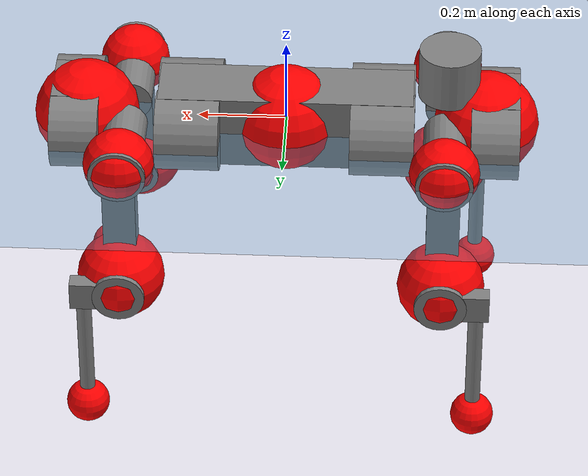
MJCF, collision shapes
<mujoco model="anymal_c">
  <compiler angle="radian" assetdir="assets" balanceinertia="true" inertiafromgeom="false"/>

  <option timestep="0.005" density="1.2" viscosity="2e-05"/>

  <size nkey="1"/>

  <visual>
    <quality shadowsize="8192"/>
    <map shadowclip="0.5"/>
  </visual>

  <default>
    <default class="/">
      <material specular="0" shininess="0.25"/>
      <geom contype="0" conaffinity="0" group="1" solref="-1000 -80"/>
      <site size="0.01 0.005 0.005" group="5"/>
      <general forcelimited="true" forcerange="-80 80" biastype="affine" gainprm="80" biasprm="0 -80 -2"/>
      <default class="anymal_c">
        <joint armature="0.01" damping="0.01" frictionloss="0.1"/>
        <default class="visual">
          <geom type="mesh" group="2"/>
          <default class="visual_zflip"/>
        </default>
        <default class="collision">
          <geom type="cylinder" group="3"/>
          <default class="foot">
            <geom size="0.03 0 0" type="sphere" condim="6" priority="1" friction="0.8 0.02 0.01" solimp="0.015 1 0.03"/>
          </default>
        </default>
      </default>
      <default class="reward_collision_sphere">
        <geom group="5" rgba="1 0 0 1"/>
      </default>
    </default>
  </default>

  <asset>
    <texture type="skybox" colorspace="auto" name="//unnamed_texture_0" builtin="gradient" rgb1="0.95 0.95 0.95" rgb2="0.95 0.95 0.95" width="100" height="600"/>
    <texture type="2d" colorspace="auto" name="texplane" builtin="checker" rgb1="0.345 0.575 0.748" rgb2="0.345 0.575 0.748" markrgb="1 1 1" width="512" height="512"/>
    <texture type="2d" colorspace="linear" name="base" file="base.png"/>
    <texture type="2d" colorspace="linear" name="top_shell" file="top_shell.png"/>
    <texture type="2d" colorspace="linear" name="bottom_shell" file="bottom_shell.png"/>
    <texture type="2d" colorspace="linear" name="remote" file="remote.png"/>
    <texture type="2d" colorspace="linear" name="hatch" file="hatch.png"/>
    <texture type="2d" colorspace="linear" name="handle" file="handle.png"/>
    <texture type="2d" colorspace="linear" name="face" file="face.png"/>
    <texture type="2d" colorspace="linear" name="battery" file="battery.png"/>
    <texture type="2d" colorspace="linear" name="lidar_cage" file="lidar_cage.png"/>
    <texture type="2d" colorspace="linear" name="depth_camera" file="depth_camera.png"/>
    <texture type="2d" colorspace="linear" name="wide_angle_camera" file="wide_angle_camera.png"/>
    <texture type="2d" colorspace="linear" name="lidar" file="lidar.png"/>
    <texture type="2d" colorspace="linear" name="drive" file="drive.png"/>
    <texture type="2d" colorspace="linear" name="hip_l" file="hip_l.png"/>
    <texture type="2d" colorspace="linear" name="shank_l" file="shank_l.png"/>
    <texture type="2d" colorspace="linear" name="foot" file="foot.png"/>
    <texture type="2d" colorspace="linear" name="thigh" file="thigh.png"/>
    <texture type="2d" colorspace="linear" name="shank_r" file="shank_r.png"/>
    <texture type="2d" colorspace="linear" name="hip_r" file="hip_r.png"/>
    <material name="MatPlane" class="/" texture="texplane" texuniform="true" texrepeat="2 2" specular="0.9" shininess="0.5"/>
    <material name="black_plastic" class="/" rgba="0.007 0.007 0.007 1"/>
    <material name="green" class="/" rgba="0.052 0.178 0.033 1"/>
    <material name="red" class="/" rgba="0.178 0.006 0.005 1"/>
    <material name="yellow" class="/" rgba="0.178 0.119 0.006 1"/>
    <material name="lwl" class="/" rgba="0.8 0.8 0.8 1"/>
    <material name="base" class="/" texture="base"/>
    <material name="top_shell" class="/" texture="top_shell"/>
    <material name="bottom_shell" class="/" texture="bottom_shell"/>
    <material name="hip_l" class="/" texture="hip_l"/>
    <material name="thigh" class="/" texture="thigh"/>
    <material name="shank_l" class="/" texture="shank_l"/>
    <material name="foot" class="/" texture="foot"/>
    <material name="hip_r" class="/" texture="hip_r"/>
    <material name="shank" class="/" texture="shank_r"/>
    <material name="hatch" class="/" texture="hatch"/>
    <material name="remote" class="/" texture="remote"/>
    <material name="handle" class="/" texture="handle"/>
    <material name="face" class="/" texture="face"/>
    <material name="depth_camera" class="/" texture="depth_camera"/>
    <material name="wide_angle_camera" class="/" texture="wide_angle_camera"/>
    <material name="battery" class="/" texture="battery"/>
    <material name="lidar_cage" class="/" texture="lidar_cage"/>
    <material name="lidar" class="/" texture="lidar"/>
    <material name="drive" class="/" texture="drive"/>
    <mesh name="base_0" class="/" file="base_0.obj"/>
    <mesh name="base_1" class="/" file="base_1.obj"/>
    <mesh name="base_2" class="/" file="base_2.obj"/>
    <mesh name="base_3" class="/" file="base_3.obj"/>
    <mesh name="base_4" class="/" file="base_4.obj"/>
    <mesh name="base_5" class="/" file="base_5.obj"/>
    <mesh name="top_shell" class="/" file="top_shell.obj"/>
    <mesh name="bottom_shell" class="/" file="bottom_shell.obj"/>
    <mesh name="remote" class="/" file="remote.obj"/>
    <mesh name="handle" class="/" file="handle.obj"/>
    <mesh name="face" class="/" file="face.obj"/>
    <mesh name="wide_angle_camera" class="/" file="wide_angle_camera.obj"/>
    <mesh name="depth_camera" class="/" file="depth_camera.obj"/>
    <mesh name="battery" class="/" file="battery.obj"/>
    <mesh name="lidar_cage" class="/" file="lidar_cage.obj"/>
    <mesh name="lidar" class="/" file="lidar.obj"/>
    <mesh name="drive" class="/" file="drive.obj"/>
    <mesh name="hip_l" class="/" file="hip_l.obj"/>
    <mesh name="thigh" class="/" file="thigh.obj"/>
    <mesh name="shank_l" class="/" file="shank_l.obj"/>
    <mesh name="foot" class="/" file="foot.obj"/>
    <mesh name="hip_r" class="/" file="hip_r.obj"/>
    <mesh name="hatch" class="/" file="hatch.obj"/>
    <mesh name="shank_r" class="/" file="shank_r.obj"/>
  </asset>

  <worldbody>
    <geom name="floor" class="/" size="100 100 0.125" type="plane" group="0" material="MatPlane"/>
    <light name="toplight_shadow" class="/" pos="0 0 5" dir="0.0990148 0.0990148 -0.990148" type="directional" ambient="0.04 0.04 0.04" diffuse="0.55 0.55 0.55" specular="0.12 0.12 0.12"/>
    <light name="toplight_fill" class="/" pos="0 0 5" dir="0.0990148 0.0990148 -0.990148" type="directional" castshadow="false" ambient="0.04 0.04 0.04" diffuse="0.3 0.3 0.3" specular="0.08 0.08 0.08"/>
    <body name="trunk" childclass="anymal_c" pos="-7.6408e-05 -0.00140287 0.000948132" quat="1 0.000186199 -0.000256211 -0.000643307">
      <inertial pos="0.00150844 -0.00271282 0.0525305" quat="0.500348 0.502224 0.499864 0.497553" mass="18.5652" diaginertia="0.626036 0.412563 0.271001"/>
      <joint name="//unnamed_joint_0" type="free" armature="0" damping="0" frictionloss="0"/>
      <geom name="//unnamed_geom_1" class="visual" material="green" mesh="base_0"/>
      <geom name="//unnamed_geom_2" class="visual" material="yellow" mesh="base_1"/>
      <geom name="//unnamed_geom_3" class="visual" material="red" mesh="base_2"/>
      <geom name="//unnamed_geom_4" class="visual" material="black_plastic" mesh="base_3"/>
      <geom name="//unnamed_geom_5" class="visual" material="lwl" mesh="base_4"/>
      <geom name="//unnamed_geom_6" class="visual" material="base" mesh="base_5"/>
      <geom name="trunk_1" class="collision" size="0.288311 0.0695924 0.0894759" type="box"/>
      <geom name="trunk_2" class="collision" size="0.0894759 0.0720778" pos="0.219479 0.0648849 0" quat="0.707107 0 0.707107 0"/>
      <geom name="trunk_3" class="collision" size="0.0894759 0.0720778" pos="-0.219479 0.0648849 0" quat="0.707107 0 0.707107 0"/>
      <geom name="trunk_4" class="collision" size="0.0894759 0.0720778" pos="0.219479 -0.0648849 0" quat="0.707107 0 0.707107 0"/>
      <geom name="trunk_5" class="collision" size="0.0894759 0.0720778" pos="-0.219479 -0.0648849 0" quat="0.707107 0 0.707107 0"/>
      <geom name="//unnamed_geom_12" class="visual" material="top_shell" mesh="top_shell"/>
      <geom name="//unnamed_geom_13" class="visual" material="bottom_shell" mesh="bottom_shell"/>
      <geom name="//unnamed_geom_14" class="visual" material="remote" mesh="remote"/>
      <geom name="//unnamed_geom_15" class="visual" material="handle" mesh="handle"/>
      <geom name="//unnamed_geom_16" class="visual" pos="0.418271 0 0" quat="1 0 0 0" material="face" mesh="face"/>
      <geom name="trunk_6" class="collision" size="0.0546797 0.0695924 0.0894759" pos="0.473772 0 0" type="box"/>
      <geom name="//unnamed_geom_18" class="collision" size="0.0894759 0.0546797" pos="0.473772 0.0648849 0" quat="0.707107 0 0.707107 0"/>
      <geom name="//unnamed_geom_19" class="collision" size="0.0894759 0.0546797" pos="0.473772 -0.0648849 0" quat="0.707107 0 0.707107 0"/>
      <geom name="//unnamed_geom_20" class="visual" pos="0.465852 0 -0.0308422" quat="0.965926 0 0.258819 0" material="depth_camera" mesh="depth_camera"/>
      <geom name="//unnamed_geom_21" class="visual" pos="0.517668 0 0.0156662" material="wide_angle_camera" mesh="wide_angle_camera"/>
      <geom name="//unnamed_geom_22" class="visual_zflip" pos="-0.418271 0 0" quat="0 0 0 1" material="face" mesh="face"/>
      <geom name="trunk_7" class="collision" size="0.0546797 0.0695924 0.0894759" pos="-0.473772 0 0" quat="0 0 0 1" type="box"/>
      <geom name="//unnamed_geom_24" class="collision" size="0.0894759 0.0546797" pos="-0.473772 -0.0648849 0" quat="0 -0.707107 0 0.707107"/>
      <geom name="//unnamed_geom_25" class="collision" size="0.0894759 0.0546797" pos="-0.473772 0.0648849 0" quat="0 -0.707107 0 0.707107"/>
      <geom name="//unnamed_geom_26" class="visual" pos="-0.465852 0 -0.0308422" quat="0 -0.258819 0 0.965926" material="depth_camera" mesh="depth_camera"/>
      <geom name="//unnamed_geom_27" class="visual_zflip" pos="-0.517668 0 0.0156662" quat="0 0 0 1" material="wide_angle_camera" mesh="wide_angle_camera"/>
      <geom name="//unnamed_geom_28" class="visual" material="battery" mesh="battery"/>
      <geom name="//unnamed_geom_29" class="visual" pos="0 0.0697962 0.0301167" quat="0.683013 -0.183013 0.183013 0.683013" material="depth_camera" mesh="depth_camera"/>
      <geom name="//unnamed_geom_30" class="visual" pos="0 -0.0697962 0.0301167" quat="0.683013 0.183013 0.183013 -0.683013" material="depth_camera" mesh="depth_camera"/>
      <geom name="//unnamed_geom_31" class="visual" pos="-0.367312 0 0.0769181" quat="1 0 0 0" material="lidar_cage" mesh="lidar_cage"/>
      <geom name="trunk_8" class="collision" size="0.0695924 0.0596506" pos="-0.367312 0 0.139708"/>
      <geom name="//unnamed_geom_33" class="visual" pos="-0.367312 -3.22827e-05 0.148813" quat="0.707107 0 0 -0.707107" material="lidar" mesh="lidar"/>
      <geom name="//unnamed_geom_34" class="visual" pos="0.302629 0.096443 -2.06272e-09" quat="0.258819 0.965926 0 0" material="drive" mesh="drive"/>
      <geom name="//unnamed_geom_35" class="visual" pos="0.302629 -0.096443 2.06272e-09" quat="0.258819 -0.965926 0 0" material="drive" mesh="drive"/>
      <geom name="//unnamed_geom_36" class="visual" pos="-0.302629 0.096443 2.06272e-09" quat="0 0 0.965926 -0.258819" material="drive" mesh="drive"/>
      <geom name="//unnamed_geom_37" class="visual" pos="-0.302629 -0.096443 -2.06272e-09" quat="0 0 -0.965926 -0.258819" material="drive" mesh="drive"/>
      <geom name="//unnamed_geom_38" class="visual" pos="0.117055 0 0.0763949" quat="1 0 0 0" material="hatch" mesh="hatch"/>
      <geom name="//unnamed_geom_39" class="reward_collision_sphere" size="0.119301"/>
      <geom name="//unnamed_geom_40" class="reward_collision_sphere" size="0.119301" pos="0.454094 0 0"/>
      <geom name="//unnamed_geom_41" class="reward_collision_sphere" size="0.119301" pos="-0.454094 0 0"/>
      <site name="imu" pos="0.250857 0.0103223 0.0510413" size="0.00994177"/>
      <camera name="track" pos="0 -1.85386 0" quat="0.707107 0.707107 0 0" mode="trackcom"/>
      <camera name="ego_camera" pos="0.454094 0 -0.0418602" quat="-0.5 -0.5 0.5 0.5"/>
      <body name="LF_HIP" pos="0.302858 0.0965097 -0.000108056" quat="0.258638 0.965974 -2.56967e-05 0.000144411">
        <inertial pos="0.0572879 -0.0160863 -0.00879396" quat="-0.119744 0.715057 -0.127209 0.676885" mass="2.71171" diaginertia="0.00601909 0.00332565 0.00405164"/>
        <joint name="LF_HAA" pos="0 0 0" axis="1 0.000152157 -0.00016818" range="-0.725969 0.508436" armature="0.00955139" damping="0.0133503" frictionloss="0.100432"/>
        <geom name="//unnamed_geom_42" class="visual" pos="0 -0.000121341 1.99301e-05" quat="0.258819 -0.965926 0 0" material="hip_l" mesh="hip_l"/>
        <geom name="//unnamed_geom_43" class="visual" pos="0.060445 -0.0722026 -0.0425706" quat="0.183013 -0.683013 0.683013 0.183013" material="drive" mesh="drive"/>
        <geom name="//unnamed_geom_44" class="collision" size="0.0497089 0.0695924" pos="0.060445 -0.0110859 -0.00722612" quat="-0.353553 -0.612372 0.612372 -0.353553"/>
        <body name="LF_THIGH" pos="0.0630481 -0.0674136 -0.0451887" quat="0.183505 -0.682294 0.683753 0.182433">
          <inertial pos="0.0313051 0.00274133 -0.25636" quat="0.993287 -0.0063683 -0.0810541 0.0822791" mass="3.02355" diaginertia="0.0305589 0.021072 0.00524425"/>
          <joint name="LF_HFE" pos="0 0 0" axis="0.99996 -0.00454527 -0.00772423" stiffness="0.000369846" range="-3.17611 3.08562" armature="0.0112652" damping="0.00520907" frictionloss="0.0963122"/>
          <geom name="//unnamed_geom_45" class="visual" pos="0.00163488 2.57619e-06 0" quat="0.707107 0 0 -0.707107" material="thigh" mesh="thigh"/>
          <geom name="//unnamed_geom_46" class="collision" size="0.0646215 0.0397671" pos="0.0403639 0 0" quat="0.5 0.5 -0.5 -0.5"/>
          <geom name="//unnamed_geom_47" class="collision" size="0.0372816 0.0298253 0.140491" pos="0.030273 0 -0.147886" quat="0.707107 0 0 -0.707107" type="box"/>
          <geom name="//unnamed_geom_48" class="visual" pos="0.101213 0 -0.298254" quat="1 0 0 0" material="drive" mesh="drive"/>
          <geom name="//unnamed_geom_49" class="collision" size="0.0497089 0.0695924" pos="0.0305757 0 -0.298254" quat="0.707107 0 0.707107 0"/>
          <geom name="//unnamed_geom_50" class="reward_collision_sphere" size="0.0795342" pos="0.0252275 0 0"/>
          <body name="LF_SHANK" pos="0.10104 -0.000570626 -0.296571" quat="1 1.09912e-05 -4.74851e-05 9.14129e-05">
            <inertial pos="0.00297464 -0.0578143 -0.0866542" quat="0.993214 -0.113007 -0.000609841 -0.0274736" mass="0.564101" diaginertia="0.0105022 0.00643489 0.00138378"/>
            <joint name="LF_KFE" pos="0 0 0" axis="0.999998 0.00207264 -0.000777997" range="-3.08675 3.18162" armature="0.00964254" damping="0" frictionloss="0.0950532"/>
            <geom name="//unnamed_geom_51" class="visual" pos="0.000533098 0.00284251 0" quat="0.707107 0 0 -0.707107" material="shank_l" mesh="shank_l"/>
            <geom name="LF_kfe_act" class="collision" size="0.0596506 0.0198835" pos="0.020182 0 0" quat="0.5 0.5 -0.5 -0.5"/>
            <geom name="//unnamed_geom_53" class="collision" size="0.0571642 0.0335535 0.0188894" pos="0.020182 -0.0532974 0" quat="0.5 0.5 -0.5 -0.5" type="box"/>
            <geom name="//unnamed_geom_54" class="visual" pos="0.0131686 -0.0806073 -0.353687" quat="0.382683 0 0 -0.92388" material="foot" mesh="foot"/>
            <geom name="LF_calf" class="collision" size="0.0173981 0.140429" pos="0.0131687 -0.0815233 -0.176844" quat="0.707107 0 0 -0.707107"/>
            <geom name="LF_foot" class="foot" size="0.0306967" pos="0.0131687 -0.0815233 -0.330141" quat="0.707107 0 0 -0.707107"/>
            <geom name="//unnamed_geom_57" class="reward_collision_sphere" size="0.0994177" pos="-0.0504549 0 0"/>
            <geom name="//unnamed_geom_58" class="reward_collision_sphere" size="0.0497089" pos="0.0131687 -0.0815233 -0.330141"/>
            <site name="LF_foot" class="foot" pos="0.0131687 -0.0815233 -0.330141" quat="0.707107 0 0 -0.707107" size="0.00994177"/>
          </body>
        </body>
      </body>
      <body name="RF_HIP" pos="0.300414 -0.0968391 -0.00235934" quat="0.258581 -0.96599 0.00040897 -0.000103437">
        <inertial pos="0.0576696 0.0141655 -0.00866588" quat="0.128653 0.681065 0.13853 0.707395" mass="2.75787" diaginertia="0.00601621 0.0033618 0.00409902"/>
        <joint name="RF_HAA" pos="0 0 0" axis="0.999984 0.00341642 -0.0044379" range="-0.487738 0.771716" armature="0.0100023" damping="0.0112157" frictionloss="0.0942984"/>
        <geom name="//unnamed_geom_59" class="visual" pos="0 0.00012134 1.993e-05" quat="0.258819 0.965926 0 0" material="hip_r" mesh="hip_r"/>
        <geom name="//unnamed_geom_60" class="visual" pos="0.060445 0.0722026 -0.0425706" quat="0.183013 0.683013 0.683013 -0.183013" material="drive" mesh="drive"/>
        <geom name="//unnamed_geom_61" class="collision" size="0.0497089 0.0695924" pos="0.060445 0.0110859 -0.00722612" quat="-0.353553 0.612372 0.612372 0.353553"/>
        <body name="RF_THIGH" pos="0.0612092 0.0690256 -0.0463628" quat="0.182921 0.68298 0.683177 -0.182611">
          <inertial pos="0.0315152 -0.00138478 -0.254253" quat="0.992332 -0.00560607 -0.0835213 0.0909367" mass="2.97309" diaginertia="0.0310319 0.0204101 0.00523956"/>
          <joint name="RF_HFE" pos="0 0 0" axis="1 0.000180005 -0.000968667" stiffness="0.0147013" range="-3.14866 3.1242" armature="0.00877217" damping="0.022832" frictionloss="0.0940568"/>
          <geom name="//unnamed_geom_62" class="visual" pos="0.00163488 2.57619e-06 0" quat="0.707107 0 0 -0.707107" material="thigh" mesh="thigh"/>
          <geom name="//unnamed_geom_63" class="collision" size="0.0646215 0.0397671" pos="0.0403639 0 0" quat="0.5 0.5 0.5 0.5"/>
          <geom name="//unnamed_geom_64" class="collision" size="0.0372816 0.0298253 0.140491" pos="0.030273 0 -0.147886" quat="0.707107 0 0 0.707107" type="box"/>
          <geom name="//unnamed_geom_65" class="visual" pos="0.101213 0 -0.298254" quat="1 0 0 0" material="drive" mesh="drive"/>
          <geom name="//unnamed_geom_66" class="collision" size="0.0497089 0.0695924" pos="0.0305757 0 -0.298254" quat="0.707107 0 0.707107 0"/>
          <geom name="//unnamed_geom_67" class="reward_collision_sphere" size="0.0795342" pos="0.0252275 0 0"/>
          <body name="RF_SHANK" pos="0.10237 2.0532e-05 -0.2961" quat="1 6.54693e-05 0.000297315 0.000416664">
            <inertial pos="0.00469357 0.0581637 -0.0836825" quat="0.992914 0.116387 -0.00157296 0.0239458" mass="0.596848" diaginertia="0.011063 0.00666672 0.00143409"/>
            <joint name="RF_KFE" pos="0 0 0" axis="0.999995 -0.00153279 -0.002868" range="-3.14522 3.116" armature="0.0102551" damping="0" frictionloss="0.102712"/>
            <geom name="//unnamed_geom_68" class="visual" pos="0.000533095 -0.0028425 0" quat="0.707107 0 0 0.707107" material="shank" mesh="shank_r"/>
            <geom name="RF_kfe_act" class="collision" size="0.0596506 0.0198835" pos="0.020182 0 0" quat="0.5 0.5 0.5 0.5"/>
            <geom name="//unnamed_geom_70" class="collision" size="0.0571642 0.0335535 0.0188894" pos="0.020182 0.0532974 0" quat="0.5 0.5 0.5 0.5" type="box"/>
            <geom name="//unnamed_geom_71" class="visual" pos="0.0131689 0.0806073 -0.353687" quat="0.382683 0 0 0.92388" material="foot" mesh="foot"/>
            <geom name="RF_calf" class="collision" size="0.0173981 0.140429" pos="0.0131687 0.0815233 -0.176844" quat="0.707107 0 0 0.707107"/>
            <geom name="RF_foot" class="foot" size="0.0269725" pos="0.0131687 0.0815233 -0.330141" quat="0.707107 0 0 0.707107"/>
            <geom name="//unnamed_geom_74" class="reward_collision_sphere" size="0.0994177" pos="-0.0504549 0 0"/>
            <geom name="//unnamed_geom_75" class="reward_collision_sphere" size="0.0497089" pos="0.0131687 0.0815233 -0.330141"/>
            <site name="RF_foot" class="foot" pos="0.0131687 0.0815233 -0.330141" quat="0.707107 0 0 0.707107" size="0.00994177"/>
          </body>
        </body>
      </body>
      <body name="LH_HIP" pos="-0.302094 0.0971491 0.0019621" quat="-0.000264745 -5.52087e-05 0.965873 -0.259016">
        <inertial pos="0.0563854 0.0150796 -0.00779602" quat="0.139301 0.681016 0.126796 0.707627" mass="2.65891" diaginertia="0.00624119 0.00337964 0.00419396"/>
        <joint name="LH_HAA" pos="0 0 0" axis="0.999992 -0.00175776 0.00372597" stiffness="0.00417583" range="-0.447563 0.738915" armature="0.0104465" damping="0.00860741" frictionloss="0.109448"/>
        <geom name="//unnamed_geom_76" class="visual" pos="0 0.00012134 1.993e-05" quat="-0.258819 -0.965926 0 0" material="hip_r" mesh="hip_r"/>
        <geom name="//unnamed_geom_77" class="visual" pos="0.060445 0.0722026 -0.0425706" quat="0.183013 0.683013 0.683013 -0.183013" material="drive" mesh="drive"/>
        <geom name="//unnamed_geom_78" class="collision" size="0.0497089 0.0695924" pos="0.060445 0.0110859 -0.00722612" quat="-0.353553 0.612372 0.612372 0.353553"/>
        <body name="LH_THIGH" pos="0.0599605 0.0680266 -0.0433728" quat="0.182984 0.683866 0.681989 -0.183669">
          <inertial pos="0.0316971 0.00254319 -0.257709" quat="0.992675 -0.0120658 -0.075517 0.093529" mass="2.91179" diaginertia="0.0313776 0.0206085 0.00540958"/>
          <joint name="LH_HFE" pos="0 0 0" axis="0.99991 0.00957504 0.00942536" stiffness="0.00322738" range="-3.13346 3.12824" armature="0.0106007" damping="0.0193134" frictionloss="0.0961193"/>
          <geom name="//unnamed_geom_79" class="visual" pos="0.00163488 2.57619e-06 0" quat="0.707107 0 0 -0.707107" material="thigh" mesh="thigh"/>
          <geom name="//unnamed_geom_80" class="collision" size="0.0646215 0.0397671" pos="0.0403639 0 0" quat="0.5 0.5 -0.5 -0.5"/>
          <geom name="//unnamed_geom_81" class="collision" size="0.0372816 0.0298253 0.140491" pos="0.030273 0 -0.147886" quat="0.707107 0 0 -0.707107" type="box"/>
          <geom name="//unnamed_geom_82" class="visual" pos="0.101213 0 -0.298254" quat="1 0 0 0" material="drive" mesh="drive"/>
          <geom name="//unnamed_geom_83" class="collision" size="0.0497089 0.0695924" pos="0.0305757 0 -0.298254" quat="0.707107 0 0.707107 0"/>
          <geom name="//unnamed_geom_84" class="reward_collision_sphere" size="0.0795342" pos="0.0252275 0 0"/>
          <body name="LH_SHANK" pos="0.101475 -0.000500751 -0.297729" quat="1 1.33807e-05 1.7168e-05 -6.43266e-05">
            <inertial pos="0.00523334 0.0589125 -0.0845379" quat="0.992933 0.115454 -0.000132845 0.0274504" mass="0.580129" diaginertia="0.0103187 0.00612516 0.00135706"/>
            <joint name="LH_KFE" pos="0 0 0" axis="0.999987 0.0021165 0.00455028" stiffness="0.00608312" range="-3.09028 3.13384" armature="0.0112756" damping="0.0168094" frictionloss="0.0933158"/>
            <geom name="//unnamed_geom_85" class="visual" pos="0.000533095 -0.0028425 0" quat="-0.707107 0 0 -0.707107" material="shank" mesh="shank_r"/>
            <geom name="LH_kfe_act" class="collision" size="0.0596506 0.0198835" pos="0.020182 0 0" quat="0.5 0.5 -0.5 -0.5"/>
            <geom name="//unnamed_geom_87" class="collision" size="0.0571642 0.0335535 0.0188894" pos="0.020182 0.0532974 0" quat="0.5 0.5 -0.5 -0.5" type="box"/>
            <geom name="//unnamed_geom_88" class="visual" pos="0.0131689 0.0806073 -0.353687" quat="-0.382683 0 0 -0.92388" material="foot" mesh="foot"/>
            <geom name="LH_calf" class="collision" size="0.0173981 0.140429" pos="0.0131687 0.0815233 -0.176844" quat="0.707107 0 0 -0.707107"/>
            <geom name="LH_foot" class="foot" size="0.0300641" pos="0.0131687 0.0815233 -0.330141" quat="0.707107 0 0 -0.707107"/>
            <geom name="//unnamed_geom_91" class="reward_collision_sphere" size="0.0994177" pos="-0.0504549 0 0"/>
            <geom name="//unnamed_geom_92" class="reward_collision_sphere" size="0.0497089" pos="0.0131687 0.0815233 -0.330141"/>
            <site name="LH_foot" class="foot" pos="0.0131687 0.0815233 -0.330141" quat="0.707107 0 0 -0.707107" size="0.00994177"/>
          </body>
        </body>
      </body>
      <body name="RH_HIP" pos="-0.305197 -0.0975528 0.000615152" quat="0.000608411 -0.00127407 -0.966004 -0.258525">
        <inertial pos="0.0576998 -0.0133353 -0.00822862" quat="-0.127982 0.710249 -0.135579 0.678812" mass="2.71754" diaginertia="0.00610017 0.00331508 0.00425128"/>
        <joint name="RH_HAA" pos="0 0 0" axis="0.999997 0.00222078 0.000320361" stiffness="0.00390856" range="-0.70254 0.524196" armature="0.01122" damping="0.011548" frictionloss="0.10456"/>
        <geom name="//unnamed_geom_93" class="visual" pos="0 -0.000121341 1.99301e-05" quat="-0.258819 0.965926 0 0" material="hip_l" mesh="hip_l"/>
        <geom name="//unnamed_geom_94" class="visual" pos="0.060445 -0.0722026 -0.0425706" quat="-0.183013 0.683013 -0.683013 -0.183013" material="drive" mesh="drive"/>
        <geom name="//unnamed_geom_95" class="collision" size="0.0497089 0.0695924" pos="0.060445 -0.0110859 -0.00722612" quat="0.353553 0.612372 -0.612372 0.353553"/>
        <body name="RH_THIGH" pos="0.0588464 -0.0649786 -0.0438333" quat="-0.183252 0.682877 -0.683052 -0.183132">
          <inertial pos="0.0310149 -0.00201138 -0.257398" quat="0.993429 -0.00666666 -0.0783021 0.083204" mass="2.94068" diaginertia="0.0312612 0.0204407 0.00509748"/>
          <joint name="RH_HFE" pos="0 0 0" axis="0.999993 -0.00261736 0.00268135" stiffness="0.00642543" range="-3.13131 3.19544" armature="0.00862238" damping="0.0193122" frictionloss="0.0974731"/>
          <geom name="//unnamed_geom_96" class="visual" pos="0.00163488 2.57619e-06 0" quat="0.707107 0 0 -0.707107" material="thigh" mesh="thigh"/>
          <geom name="//unnamed_geom_97" class="collision" size="0.0646215 0.0397671" pos="0.0403639 0 0" quat="0.5 0.5 0.5 0.5"/>
          <geom name="//unnamed_geom_98" class="collision" size="0.0372816 0.0298253 0.140491" pos="0.030273 0 -0.147886" quat="0.707107 0 0 0.707107" type="box"/>
          <geom name="//unnamed_geom_99" class="visual" pos="0.101213 0 -0.298254" quat="1 0 0 0" material="drive" mesh="drive"/>
          <geom name="//unnamed_geom_100" class="collision" size="0.0497089 0.0695924" pos="0.0305757 0 -0.298254" quat="0.707107 0 0.707107 0"/>
          <geom name="//unnamed_geom_101" class="reward_collision_sphere" size="0.0795342" pos="0.0252275 0 0"/>
          <body name="RH_SHANK" pos="0.101608 -0.000296555 -0.29813" quat="1 -2.96949e-05 5.33344e-06 0.000160597">
            <inertial pos="0.00492711 -0.0575455 -0.084036" quat="0.992829 -0.116687 -0.000445885 -0.0259765" mass="0.589809" diaginertia="0.0105264 0.00635088 0.0014068"/>
            <joint name="RH_KFE" pos="0 0 0" axis="0.999995 0.000856967 0.00293018" range="-3.07545 3.13748" armature="0.00986852" damping="0.0142878" frictionloss="0.102351"/>
            <geom name="//unnamed_geom_102" class="visual" pos="0.000533098 0.00284251 0" quat="0.707107 0 0 -0.707107" material="shank_l" mesh="shank_l"/>
            <geom name="RH_kfe_act" class="collision" size="0.0596506 0.0198835" pos="0.020182 0 0" quat="0.5 0.5 0.5 0.5"/>
            <geom name="//unnamed_geom_104" class="collision" size="0.0571642 0.0335535 0.0188894" pos="0.020182 -0.0532974 0" quat="0.5 0.5 0.5 0.5" type="box"/>
            <geom name="//unnamed_geom_105" class="visual" pos="0.0131686 -0.0806073 -0.353687" quat="0.382683 0 0 -0.92388" material="foot" mesh="foot"/>
            <geom name="RH_calf" class="collision" size="0.0173981 0.140429" pos="0.0131687 -0.0815233 -0.176844" quat="0.707107 0 0 0.707107"/>
            <geom name="RH_foot" class="foot" size="0.0309502" pos="0.0131687 -0.0815233 -0.330141" quat="0.707107 0 0 0.707107"/>
            <geom name="//unnamed_geom_108" class="reward_collision_sphere" size="0.0994177" pos="-0.0504549 0 0"/>
            <geom name="//unnamed_geom_109" class="reward_collision_sphere" size="0.0497089" pos="0.0131687 -0.0815233 -0.330141"/>
            <site name="RH_foot" class="foot" pos="0.0131687 -0.0815233 -0.330141" quat="0.707107 0 0 0.707107" size="0.00994177"/>
          </body>
        </body>
      </body>
    </body>
  </worldbody>

  <contact>
    <pair class="/" geom1="floor" geom2="LF_foot" name="//unnamed_contact_0"/>
    <pair class="/" geom1="floor" geom2="RF_foot" name="//unnamed_contact_1"/>
    <pair class="/" geom1="floor" geom2="LH_foot" name="//unnamed_contact_2"/>
    <pair class="/" geom1="floor" geom2="RH_foot" name="//unnamed_contact_3"/>
  </contact>

  <actuator>
    <general name="LF_HAA" class="/" joint="LF_HAA" forcerange="-81.484 81.484" gainprm="80.0769" biasprm="0 -80.0769 -1.9674"/>
    <general name="LF_HFE" class="/" joint="LF_HFE" forcerange="-79.2135 79.2135" gainprm="80.0769" biasprm="0 -80.0769 -1.9674"/>
    <general name="LF_KFE" class="/" joint="LF_KFE" forcerange="-80.351 80.351" gainprm="80.0769" biasprm="0 -80.0769 -1.9674"/>
    <general name="RF_HAA" class="/" joint="RF_HAA" forcerange="-79.6995 79.6995" gainprm="80.0769" biasprm="0 -80.0769 -1.9674"/>
    <general name="RF_HFE" class="/" joint="RF_HFE" forcerange="-81.9021 81.9021" gainprm="80.0769" biasprm="0 -80.0769 -1.9674"/>
    <general name="RF_KFE" class="/" joint="RF_KFE" forcerange="-74.3505 74.3505" gainprm="80.0769" biasprm="0 -80.0769 -1.9674"/>
    <general name="LH_HAA" class="/" joint="LH_HAA" forcerange="-83.0226 83.0226" gainprm="80.0769" biasprm="0 -80.0769 -1.9674"/>
    <general name="LH_HFE" class="/" joint="LH_HFE" forcerange="-80.1991 80.1991" gainprm="80.0769" biasprm="0 -80.0769 -1.9674"/>
    <general name="LH_KFE" class="/" joint="LH_KFE" forcerange="-77.8075 77.8075" gainprm="80.0769" biasprm="0 -80.0769 -1.9674"/>
    <general name="RH_HAA" class="/" joint="RH_HAA" forcerange="-80.3494 80.3494" gainprm="80.0769" biasprm="0 -80.0769 -1.9674"/>
    <general name="RH_HFE" class="/" joint="RH_HFE" forcerange="-78.2071 78.2071" gainprm="80.0769" biasprm="0 -80.0769 -1.9674"/>
    <general name="RH_KFE" class="/" joint="RH_KFE" forcerange="-87.4584 87.4584" gainprm="80.0769" biasprm="0 -80.0769 -1.9674"/>
  </actuator>

  <sensor>
    <gyro site="imu" name="imu_angular_velocity"/>
    <velocimeter site="imu" name="imu_linear_velocity"/>
    <framelinvel objtype="site" objname="LF_foot" name="LF_foot_global_linear_velocity"/>
    <framelinvel objtype="site" objname="RF_foot" name="RF_foot_global_linear_velocity"/>
    <framelinvel objtype="site" objname="LH_foot" name="LH_foot_global_linear_velocity"/>
    <framelinvel objtype="site" objname="RH_foot" name="RH_foot_global_linear_velocity"/>
  </sensor>

  <keyframe>
    <key name="home" qpos="0 0 0.55 1 0 0 0 0 0.4 -0.8 0 -0.4 0.8 0 -0.4 0.8 0 0.4 -0.8"/>
  </keyframe>
</mujoco>
